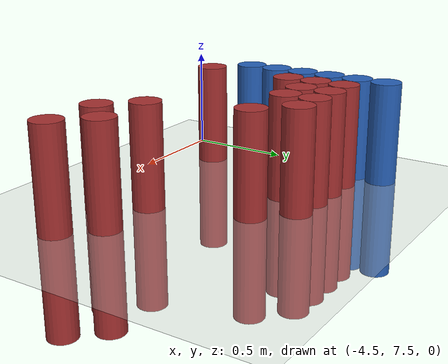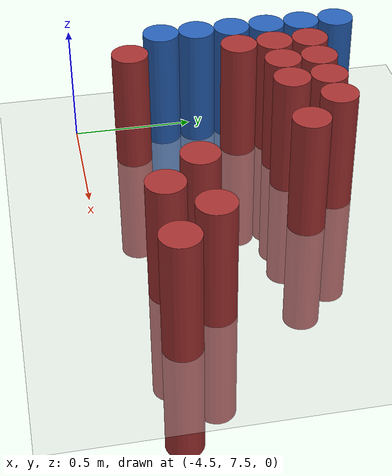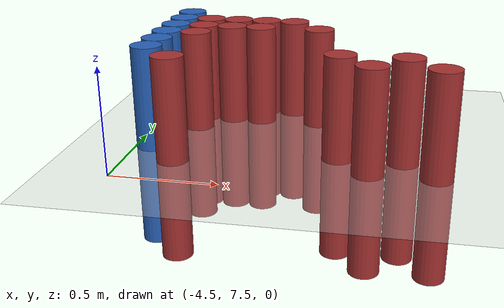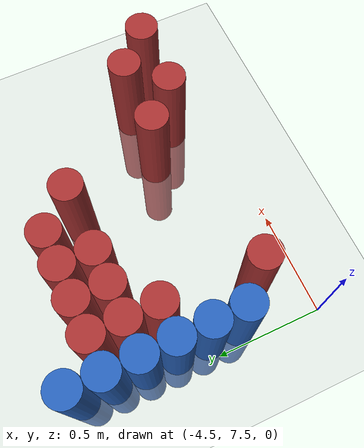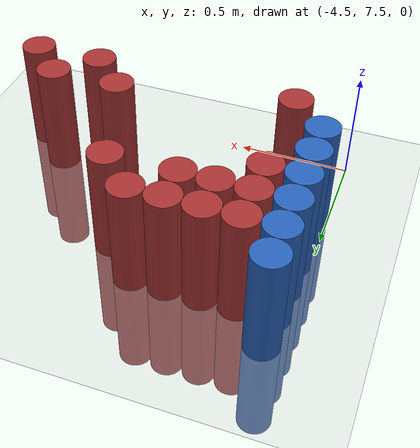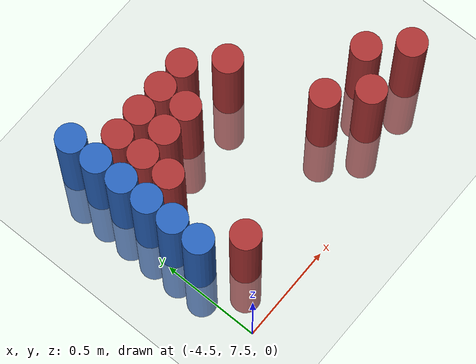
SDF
<sdf version="1.6">
 <world name="default">
  <model name="ground_plane">
   <static>1</static>
   <link name="link">
    <collision name="collision">
     <geometry><plane><normal>0 0 1</normal><size>100 100</size></plane></geometry>
     <surface><friction><ode><mu>100</mu><mu2>50</mu2></ode></friction></surface>
    </collision>
    <visual name="visual">
     <cast_shadows>0</cast_shadows>
     <geometry><plane><normal>0 0 1</normal><size>100 100</size></plane></geometry>
     <material>
      <script><uri>file://media/materials/scripts/gazebo.material</uri><name>Gazebo/Grey</name></script>
     </material>
    </visual>
   </link>
  </model>
  <model name="unit_cylinder_114">
   <static>1</static>
   <pose>-4.425000 7.875000 0.000000 0.000000 0.000000 0.000000</pose>
   <link name="link">
    <inertial>
     <mass>1</mass>
     <inertia><ixx>0.145833</ixx><ixy>0</ixy><ixz>0</ixz><iyy>0.145833</iyy><iyz>0</iyz><izz>0.125</izz></inertia>
    </inertial>
    <collision name="collision">
     <geometry><cylinder><radius>0.075000</radius><length>1</length></cylinder></geometry>
    </collision>
    <visual name="visual">
     <geometry><cylinder><radius>0.075000</radius><length>1</length></cylinder></geometry>
     <material>
      <ambient>0.152000 0.379000 0.720000 1</ambient>
      <diffuse>0.152000 0.379000 0.720000 1</diffuse>
     </material>
     <material>
      <script><name>Gazebo/Grey</name><uri>file://media/materials/scripts/gazebo.material</uri></script>
     </material>
    </visual>
    <sensor name="sensor_contact" type="contact"><contact><collision>collision</collision></contact></sensor>
   </link>
   <plugin filename="gz-sim-touchplugin-system" name="gz::sim::systems::TouchPlugin">
    <target>robot</target>
    <namespace>robot</namespace>
    <time>0.001</time>
    <enabled>true</enabled>
   </plugin>
  </model>
  <model name="unit_cylinder_115">
   <static>1</static>
   <pose>-4.425000 8.025000 0.000000 0.000000 0.000000 0.000000</pose>
   <link name="link">
    <inertial>
     <mass>1</mass>
     <inertia><ixx>0.145833</ixx><ixy>0</ixy><ixz>0</ixz><iyy>0.145833</iyy><iyz>0</iyz><izz>0.125</izz></inertia>
    </inertial>
    <collision name="collision">
     <geometry><cylinder><radius>0.075000</radius><length>1</length></cylinder></geometry>
    </collision>
    <visual name="visual">
     <geometry><cylinder><radius>0.075000</radius><length>1</length></cylinder></geometry>
     <material>
      <ambient>0.152000 0.379000 0.720000 1</ambient>
      <diffuse>0.152000 0.379000 0.720000 1</diffuse>
     </material>
     <material>
      <script><name>Gazebo/Grey</name><uri>file://media/materials/scripts/gazebo.material</uri></script>
     </material>
    </visual>
    <sensor name="sensor_contact" type="contact"><contact><collision>collision</collision></contact></sensor>
   </link>
   <plugin filename="gz-sim-touchplugin-system" name="gz::sim::systems::TouchPlugin">
    <target>robot</target>
    <namespace>robot</namespace>
    <time>0.001</time>
    <enabled>true</enabled>
   </plugin>
  </model>
  <model name="unit_cylinder_116">
   <static>1</static>
   <pose>-4.425000 8.175000 0.000000 0.000000 0.000000 0.000000</pose>
   <link name="link">
    <inertial>
     <mass>1</mass>
     <inertia><ixx>0.145833</ixx><ixy>0</ixy><ixz>0</ixz><iyy>0.145833</iyy><iyz>0</iyz><izz>0.125</izz></inertia>
    </inertial>
    <collision name="collision">
     <geometry><cylinder><radius>0.075000</radius><length>1</length></cylinder></geometry>
    </collision>
    <visual name="visual">
     <geometry><cylinder><radius>0.075000</radius><length>1</length></cylinder></geometry>
     <material>
      <ambient>0.152000 0.379000 0.720000 1</ambient>
      <diffuse>0.152000 0.379000 0.720000 1</diffuse>
     </material>
     <material>
      <script><name>Gazebo/Grey</name><uri>file://media/materials/scripts/gazebo.material</uri></script>
     </material>
    </visual>
    <sensor name="sensor_contact" type="contact"><contact><collision>collision</collision></contact></sensor>
   </link>
   <plugin filename="gz-sim-touchplugin-system" name="gz::sim::systems::TouchPlugin">
    <target>robot</target>
    <namespace>robot</namespace>
    <time>0.001</time>
    <enabled>true</enabled>
   </plugin>
  </model>
  <model name="unit_cylinder_117">
   <static>1</static>
   <pose>-4.425000 8.325000 0.000000 0.000000 0.000000 0.000000</pose>
   <link name="link">
    <inertial>
     <mass>1</mass>
     <inertia><ixx>0.145833</ixx><ixy>0</ixy><ixz>0</ixz><iyy>0.145833</iyy><iyz>0</iyz><izz>0.125</izz></inertia>
    </inertial>
    <collision name="collision">
     <geometry><cylinder><radius>0.075000</radius><length>1</length></cylinder></geometry>
    </collision>
    <visual name="visual">
     <geometry><cylinder><radius>0.075000</radius><length>1</length></cylinder></geometry>
     <material>
      <ambient>0.152000 0.379000 0.720000 1</ambient>
      <diffuse>0.152000 0.379000 0.720000 1</diffuse>
     </material>
     <material>
      <script><name>Gazebo/Grey</name><uri>file://media/materials/scripts/gazebo.material</uri></script>
     </material>
    </visual>
    <sensor name="sensor_contact" type="contact"><contact><collision>collision</collision></contact></sensor>
   </link>
   <plugin filename="gz-sim-touchplugin-system" name="gz::sim::systems::TouchPlugin">
    <target>robot</target>
    <namespace>robot</namespace>
    <time>0.001</time>
    <enabled>true</enabled>
   </plugin>
  </model>
  <model name="unit_cylinder_118">
   <static>1</static>
   <pose>-4.425000 8.475000 0.000000 0.000000 0.000000 0.000000</pose>
   <link name="link">
    <inertial>
     <mass>1</mass>
     <inertia><ixx>0.145833</ixx><ixy>0</ixy><ixz>0</ixz><iyy>0.145833</iyy><iyz>0</iyz><izz>0.125</izz></inertia>
    </inertial>
    <collision name="collision">
     <geometry><cylinder><radius>0.075000</radius><length>1</length></cylinder></geometry>
    </collision>
    <visual name="visual">
     <geometry><cylinder><radius>0.075000</radius><length>1</length></cylinder></geometry>
     <material>
      <ambient>0.152000 0.379000 0.720000 1</ambient>
      <diffuse>0.152000 0.379000 0.720000 1</diffuse>
     </material>
     <material>
      <script><name>Gazebo/Grey</name><uri>file://media/materials/scripts/gazebo.material</uri></script>
     </material>
    </visual>
    <sensor name="sensor_contact" type="contact"><contact><collision>collision</collision></contact></sensor>
   </link>
   <plugin filename="gz-sim-touchplugin-system" name="gz::sim::systems::TouchPlugin">
    <target>robot</target>
    <namespace>robot</namespace>
    <time>0.001</time>
    <enabled>true</enabled>
   </plugin>
  </model>
  <model name="unit_cylinder_119">
   <static>1</static>
   <pose>-4.425000 8.625000 0.000000 0.000000 0.000000 0.000000</pose>
   <link name="link">
    <inertial>
     <mass>1</mass>
     <inertia><ixx>0.145833</ixx><ixy>0</ixy><ixz>0</ixz><iyy>0.145833</iyy><iyz>0</iyz><izz>0.125</izz></inertia>
    </inertial>
    <collision name="collision">
     <geometry><cylinder><radius>0.075000</radius><length>1</length></cylinder></geometry>
    </collision>
    <visual name="visual">
     <geometry><cylinder><radius>0.075000</radius><length>1</length></cylinder></geometry>
     <material>
      <ambient>0.152000 0.379000 0.720000 1</ambient>
      <diffuse>0.152000 0.379000 0.720000 1</diffuse>
     </material>
     <material>
      <script><name>Gazebo/Grey</name><uri>file://media/materials/scripts/gazebo.material</uri></script>
     </material>
    </visual>
    <sensor name="sensor_contact" type="contact"><contact><collision>collision</collision></contact></sensor>
   </link>
   <plugin filename="gz-sim-touchplugin-system" name="gz::sim::systems::TouchPlugin">
    <target>robot</target>
    <namespace>robot</namespace>
    <time>0.001</time>
    <enabled>true</enabled>
   </plugin>
  </model>
  <model name="unit_cylinder_138">
   <static>1</static>
   <pose>-4.275000 7.725000 0.000000 0.000000 0.000000 0.000000</pose>
   <link name="link">
    <inertial>
     <mass>1</mass>
     <inertia><ixx>0.145833</ixx><ixy>0</ixy><ixz>0</ixz><iyy>0.145833</iyy><iyz>0</iyz><izz>0.125</izz></inertia>
    </inertial>
    <collision name="collision">
     <geometry><cylinder><radius>0.075000</radius><length>1</length></cylinder></geometry>
    </collision>
    <visual name="visual">
     <geometry><cylinder><radius>0.075000</radius><length>1</length></cylinder></geometry>
     <material>
      <ambient>0.648000 0.192000 0.192000 1</ambient>
      <diffuse>0.648000 0.192000 0.192000 1</diffuse>
     </material>
     <material>
      <script><name>Gazebo/Grey</name><uri>file://media/materials/scripts/gazebo.material</uri></script>
     </material>
    </visual>
    <sensor name="sensor_contact" type="contact"><contact><collision>collision</collision></contact></sensor>
   </link>
   <plugin filename="gz-sim-touchplugin-system" name="gz::sim::systems::TouchPlugin">
    <target>robot</target>
    <namespace>robot</namespace>
    <time>0.001</time>
    <enabled>true</enabled>
   </plugin>
  </model>
  <model name="unit_cylinder_139">
   <static>1</static>
   <pose>-4.275000 8.175000 0.000000 0.000000 0.000000 0.000000</pose>
   <link name="link">
    <inertial>
     <mass>1</mass>
     <inertia><ixx>0.145833</ixx><ixy>0</ixy><ixz>0</ixz><iyy>0.145833</iyy><iyz>0</iyz><izz>0.125</izz></inertia>
    </inertial>
    <collision name="collision">
     <geometry><cylinder><radius>0.075000</radius><length>1</length></cylinder></geometry>
    </collision>
    <visual name="visual">
     <geometry><cylinder><radius>0.075000</radius><length>1</length></cylinder></geometry>
     <material>
      <ambient>0.648000 0.192000 0.192000 1</ambient>
      <diffuse>0.648000 0.192000 0.192000 1</diffuse>
     </material>
     <material>
      <script><name>Gazebo/Grey</name><uri>file://media/materials/scripts/gazebo.material</uri></script>
     </material>
    </visual>
    <sensor name="sensor_contact" type="contact"><contact><collision>collision</collision></contact></sensor>
   </link>
   <plugin filename="gz-sim-touchplugin-system" name="gz::sim::systems::TouchPlugin">
    <target>robot</target>
    <namespace>robot</namespace>
    <time>0.001</time>
    <enabled>true</enabled>
   </plugin>
  </model>
  <model name="unit_cylinder_140">
   <static>1</static>
   <pose>-4.275000 8.325000 0.000000 0.000000 0.000000 0.000000</pose>
   <link name="link">
    <inertial>
     <mass>1</mass>
     <inertia><ixx>0.145833</ixx><ixy>0</ixy><ixz>0</ixz><iyy>0.145833</iyy><iyz>0</iyz><izz>0.125</izz></inertia>
    </inertial>
    <collision name="collision">
     <geometry><cylinder><radius>0.075000</radius><length>1</length></cylinder></geometry>
    </collision>
    <visual name="visual">
     <geometry><cylinder><radius>0.075000</radius><length>1</length></cylinder></geometry>
     <material>
      <ambient>0.648000 0.192000 0.192000 1</ambient>
      <diffuse>0.648000 0.192000 0.192000 1</diffuse>
     </material>
     <material>
      <script><name>Gazebo/Grey</name><uri>file://media/materials/scripts/gazebo.material</uri></script>
     </material>
    </visual>
    <sensor name="sensor_contact" type="contact"><contact><collision>collision</collision></contact></sensor>
   </link>
   <plugin filename="gz-sim-touchplugin-system" name="gz::sim::systems::TouchPlugin">
    <target>robot</target>
    <namespace>robot</namespace>
    <time>0.001</time>
    <enabled>true</enabled>
   </plugin>
  </model>
  <model name="unit_cylinder_141">
   <static>1</static>
   <pose>-4.275000 8.475000 0.000000 0.000000 0.000000 0.000000</pose>
   <link name="link">
    <inertial>
     <mass>1</mass>
     <inertia><ixx>0.145833</ixx><ixy>0</ixy><ixz>0</ixz><iyy>0.145833</iyy><iyz>0</iyz><izz>0.125</izz></inertia>
    </inertial>
    <collision name="collision">
     <geometry><cylinder><radius>0.075000</radius><length>1</length></cylinder></geometry>
    </collision>
    <visual name="visual">
     <geometry><cylinder><radius>0.075000</radius><length>1</length></cylinder></geometry>
     <material>
      <ambient>0.648000 0.192000 0.192000 1</ambient>
      <diffuse>0.648000 0.192000 0.192000 1</diffuse>
     </material>
     <material>
      <script><name>Gazebo/Grey</name><uri>file://media/materials/scripts/gazebo.material</uri></script>
     </material>
    </visual>
    <sensor name="sensor_contact" type="contact"><contact><collision>collision</collision></contact></sensor>
   </link>
   <plugin filename="gz-sim-touchplugin-system" name="gz::sim::systems::TouchPlugin">
    <target>robot</target>
    <namespace>robot</namespace>
    <time>0.001</time>
    <enabled>true</enabled>
   </plugin>
  </model>
  <model name="unit_cylinder_152">
   <static>1</static>
   <pose>-4.125000 8.325000 0.000000 0.000000 0.000000 0.000000</pose>
   <link name="link">
    <inertial>
     <mass>1</mass>
     <inertia><ixx>0.145833</ixx><ixy>0</ixy><ixz>0</ixz><iyy>0.145833</iyy><iyz>0</iyz><izz>0.125</izz></inertia>
    </inertial>
    <collision name="collision">
     <geometry><cylinder><radius>0.075000</radius><length>1</length></cylinder></geometry>
    </collision>
    <visual name="visual">
     <geometry><cylinder><radius>0.075000</radius><length>1</length></cylinder></geometry>
     <material>
      <ambient>0.648000 0.192000 0.192000 1</ambient>
      <diffuse>0.648000 0.192000 0.192000 1</diffuse>
     </material>
     <material>
      <script><name>Gazebo/Grey</name><uri>file://media/materials/scripts/gazebo.material</uri></script>
     </material>
    </visual>
    <sensor name="sensor_contact" type="contact"><contact><collision>collision</collision></contact></sensor>
   </link>
   <plugin filename="gz-sim-touchplugin-system" name="gz::sim::systems::TouchPlugin">
    <target>robot</target>
    <namespace>robot</namespace>
    <time>0.001</time>
    <enabled>true</enabled>
   </plugin>
  </model>
  <model name="unit_cylinder_153">
   <static>1</static>
   <pose>-4.125000 8.475000 0.000000 0.000000 0.000000 0.000000</pose>
   <link name="link">
    <inertial>
     <mass>1</mass>
     <inertia><ixx>0.145833</ixx><ixy>0</ixy><ixz>0</ixz><iyy>0.145833</iyy><iyz>0</iyz><izz>0.125</izz></inertia>
    </inertial>
    <collision name="collision">
     <geometry><cylinder><radius>0.075000</radius><length>1</length></cylinder></geometry>
    </collision>
    <visual name="visual">
     <geometry><cylinder><radius>0.075000</radius><length>1</length></cylinder></geometry>
     <material>
      <ambient>0.648000 0.192000 0.192000 1</ambient>
      <diffuse>0.648000 0.192000 0.192000 1</diffuse>
     </material>
     <material>
      <script><name>Gazebo/Grey</name><uri>file://media/materials/scripts/gazebo.material</uri></script>
     </material>
    </visual>
    <sensor name="sensor_contact" type="contact"><contact><collision>collision</collision></contact></sensor>
   </link>
   <plugin filename="gz-sim-touchplugin-system" name="gz::sim::systems::TouchPlugin">
    <target>robot</target>
    <namespace>robot</namespace>
    <time>0.001</time>
    <enabled>true</enabled>
   </plugin>
  </model>
  <model name="unit_cylinder_158">
   <static>1</static>
   <pose>-3.975000 8.325000 0.000000 0.000000 0.000000 0.000000</pose>
   <link name="link">
    <inertial>
     <mass>1</mass>
     <inertia><ixx>0.145833</ixx><ixy>0</ixy><ixz>0</ixz><iyy>0.145833</iyy><iyz>0</iyz><izz>0.125</izz></inertia>
    </inertial>
    <collision name="collision">
     <geometry><cylinder><radius>0.075000</radius><length>1</length></cylinder></geometry>
    </collision>
    <visual name="visual">
     <geometry><cylinder><radius>0.075000</radius><length>1</length></cylinder></geometry>
     <material>
      <ambient>0.648000 0.192000 0.192000 1</ambient>
      <diffuse>0.648000 0.192000 0.192000 1</diffuse>
     </material>
     <material>
      <script><name>Gazebo/Grey</name><uri>file://media/materials/scripts/gazebo.material</uri></script>
     </material>
    </visual>
    <sensor name="sensor_contact" type="contact"><contact><collision>collision</collision></contact></sensor>
   </link>
   <plugin filename="gz-sim-touchplugin-system" name="gz::sim::systems::TouchPlugin">
    <target>robot</target>
    <namespace>robot</namespace>
    <time>0.001</time>
    <enabled>true</enabled>
   </plugin>
  </model>
  <model name="unit_cylinder_159">
   <static>1</static>
   <pose>-3.975000 8.475000 0.000000 0.000000 0.000000 0.000000</pose>
   <link name="link">
    <inertial>
     <mass>1</mass>
     <inertia><ixx>0.145833</ixx><ixy>0</ixy><ixz>0</ixz><iyy>0.145833</iyy><iyz>0</iyz><izz>0.125</izz></inertia>
    </inertial>
    <collision name="collision">
     <geometry><cylinder><radius>0.075000</radius><length>1</length></cylinder></geometry>
    </collision>
    <visual name="visual">
     <geometry><cylinder><radius>0.075000</radius><length>1</length></cylinder></geometry>
     <material>
      <ambient>0.648000 0.192000 0.192000 1</ambient>
      <diffuse>0.648000 0.192000 0.192000 1</diffuse>
     </material>
     <material>
      <script><name>Gazebo/Grey</name><uri>file://media/materials/scripts/gazebo.material</uri></script>
     </material>
    </visual>
    <sensor name="sensor_contact" type="contact"><contact><collision>collision</collision></contact></sensor>
   </link>
   <plugin filename="gz-sim-touchplugin-system" name="gz::sim::systems::TouchPlugin">
    <target>robot</target>
    <namespace>robot</namespace>
    <time>0.001</time>
    <enabled>true</enabled>
   </plugin>
  </model>
  <model name="unit_cylinder_167">
   <static>1</static>
   <pose>-3.825000 8.475000 0.000000 0.000000 0.000000 0.000000</pose>
   <link name="link">
    <inertial>
     <mass>1</mass>
     <inertia><ixx>0.145833</ixx><ixy>0</ixy><ixz>0</ixz><iyy>0.145833</iyy><iyz>0</iyz><izz>0.125</izz></inertia>
    </inertial>
    <collision name="collision">
     <geometry><cylinder><radius>0.075000</radius><length>1</length></cylinder></geometry>
    </collision>
    <visual name="visual">
     <geometry><cylinder><radius>0.075000</radius><length>1</length></cylinder></geometry>
     <material>
      <ambient>0.648000 0.192000 0.192000 1</ambient>
      <diffuse>0.648000 0.192000 0.192000 1</diffuse>
     </material>
     <material>
      <script><name>Gazebo/Grey</name><uri>file://media/materials/scripts/gazebo.material</uri></script>
     </material>
    </visual>
    <sensor name="sensor_contact" type="contact"><contact><collision>collision</collision></contact></sensor>
   </link>
   <plugin filename="gz-sim-touchplugin-system" name="gz::sim::systems::TouchPlugin">
    <target>robot</target>
    <namespace>robot</namespace>
    <time>0.001</time>
    <enabled>true</enabled>
   </plugin>
  </model>
  <model name="unit_cylinder_173">
   <static>1</static>
   <pose>-3.675000 8.325000 0.000000 0.000000 0.000000 0.000000</pose>
   <link name="link">
    <inertial>
     <mass>1</mass>
     <inertia><ixx>0.145833</ixx><ixy>0</ixy><ixz>0</ixz><iyy>0.145833</iyy><iyz>0</iyz><izz>0.125</izz></inertia>
    </inertial>
    <collision name="collision">
     <geometry><cylinder><radius>0.075000</radius><length>1</length></cylinder></geometry>
    </collision>
    <visual name="visual">
     <geometry><cylinder><radius>0.075000</radius><length>1</length></cylinder></geometry>
     <material>
      <ambient>0.648000 0.192000 0.192000 1</ambient>
      <diffuse>0.648000 0.192000 0.192000 1</diffuse>
     </material>
     <material>
      <script><name>Gazebo/Grey</name><uri>file://media/materials/scripts/gazebo.material</uri></script>
     </material>
    </visual>
    <sensor name="sensor_contact" type="contact"><contact><collision>collision</collision></contact></sensor>
   </link>
   <plugin filename="gz-sim-touchplugin-system" name="gz::sim::systems::TouchPlugin">
    <target>robot</target>
    <namespace>robot</namespace>
    <time>0.001</time>
    <enabled>true</enabled>
   </plugin>
  </model>
  <model name="unit_cylinder_179">
   <static>1</static>
   <pose>-3.525000 7.875000 0.000000 0.000000 0.000000 0.000000</pose>
   <link name="link">
    <inertial>
     <mass>1</mass>
     <inertia><ixx>0.145833</ixx><ixy>0</ixy><ixz>0</ixz><iyy>0.145833</iyy><iyz>0</iyz><izz>0.125</izz></inertia>
    </inertial>
    <collision name="collision">
     <geometry><cylinder><radius>0.075000</radius><length>1</length></cylinder></geometry>
    </collision>
    <visual name="visual">
     <geometry><cylinder><radius>0.075000</radius><length>1</length></cylinder></geometry>
     <material>
      <ambient>0.648000 0.192000 0.192000 1</ambient>
      <diffuse>0.648000 0.192000 0.192000 1</diffuse>
     </material>
     <material>
      <script><name>Gazebo/Grey</name><uri>file://media/materials/scripts/gazebo.material</uri></script>
     </material>
    </visual>
    <sensor name="sensor_contact" type="contact"><contact><collision>collision</collision></contact></sensor>
   </link>
   <plugin filename="gz-sim-touchplugin-system" name="gz::sim::systems::TouchPlugin">
    <target>robot</target>
    <namespace>robot</namespace>
    <time>0.001</time>
    <enabled>true</enabled>
   </plugin>
  </model>
  <model name="unit_cylinder_184">
   <static>1</static>
   <pose>-3.375000 7.725000 0.000000 0.000000 0.000000 0.000000</pose>
   <link name="link">
    <inertial>
     <mass>1</mass>
     <inertia><ixx>0.145833</ixx><ixy>0</ixy><ixz>0</ixz><iyy>0.145833</iyy><iyz>0</iyz><izz>0.125</izz></inertia>
    </inertial>
    <collision name="collision">
     <geometry><cylinder><radius>0.075000</radius><length>1</length></cylinder></geometry>
    </collision>
    <visual name="visual">
     <geometry><cylinder><radius>0.075000</radius><length>1</length></cylinder></geometry>
     <material>
      <ambient>0.648000 0.192000 0.192000 1</ambient>
      <diffuse>0.648000 0.192000 0.192000 1</diffuse>
     </material>
     <material>
      <script><name>Gazebo/Grey</name><uri>file://media/materials/scripts/gazebo.material</uri></script>
     </material>
    </visual>
    <sensor name="sensor_contact" type="contact"><contact><collision>collision</collision></contact></sensor>
   </link>
   <plugin filename="gz-sim-touchplugin-system" name="gz::sim::systems::TouchPlugin">
    <target>robot</target>
    <namespace>robot</namespace>
    <time>0.001</time>
    <enabled>true</enabled>
   </plugin>
  </model>
  <model name="unit_cylinder_192">
   <static>1</static>
   <pose>-3.225000 7.875000 0.000000 0.000000 0.000000 0.000000</pose>
   <link name="link">
    <inertial>
     <mass>1</mass>
     <inertia><ixx>0.145833</ixx><ixy>0</ixy><ixz>0</ixz><iyy>0.145833</iyy><iyz>0</iyz><izz>0.125</izz></inertia>
    </inertial>
    <collision name="collision">
     <geometry><cylinder><radius>0.075000</radius><length>1</length></cylinder></geometry>
    </collision>
    <visual name="visual">
     <geometry><cylinder><radius>0.075000</radius><length>1</length></cylinder></geometry>
     <material>
      <ambient>0.648000 0.192000 0.192000 1</ambient>
      <diffuse>0.648000 0.192000 0.192000 1</diffuse>
     </material>
     <material>
      <script><name>Gazebo/Grey</name><uri>file://media/materials/scripts/gazebo.material</uri></script>
     </material>
    </visual>
    <sensor name="sensor_contact" type="contact"><contact><collision>collision</collision></contact></sensor>
   </link>
   <plugin filename="gz-sim-touchplugin-system" name="gz::sim::systems::TouchPlugin">
    <target>robot</target>
    <namespace>robot</namespace>
    <time>0.001</time>
    <enabled>true</enabled>
   </plugin>
  </model>
  <model name="unit_cylinder_200">
   <static>1</static>
   <pose>-3.075000 7.725000 0.000000 0.000000 0.000000 0.000000</pose>
   <link name="link">
    <inertial>
     <mass>1</mass>
     <inertia><ixx>0.145833</ixx><ixy>0</ixy><ixz>0</ixz><iyy>0.145833</iyy><iyz>0</iyz><izz>0.125</izz></inertia>
    </inertial>
    <collision name="collision">
     <geometry><cylinder><radius>0.075000</radius><length>1</length></cylinder></geometry>
    </collision>
    <visual name="visual">
     <geometry><cylinder><radius>0.075000</radius><length>1</length></cylinder></geometry>
     <material>
      <ambient>0.648000 0.192000 0.192000 1</ambient>
      <diffuse>0.648000 0.192000 0.192000 1</diffuse>
     </material>
     <material>
      <script><name>Gazebo/Grey</name><uri>file://media/materials/scripts/gazebo.material</uri></script>
     </material>
    </visual>
    <sensor name="sensor_contact" type="contact"><contact><collision>collision</collision></contact></sensor>
   </link>
   <plugin filename="gz-sim-touchplugin-system" name="gz::sim::systems::TouchPlugin">
    <target>robot</target>
    <namespace>robot</namespace>
    <time>0.001</time>
    <enabled>true</enabled>
   </plugin>
  </model>
 </world>
</sdf>
